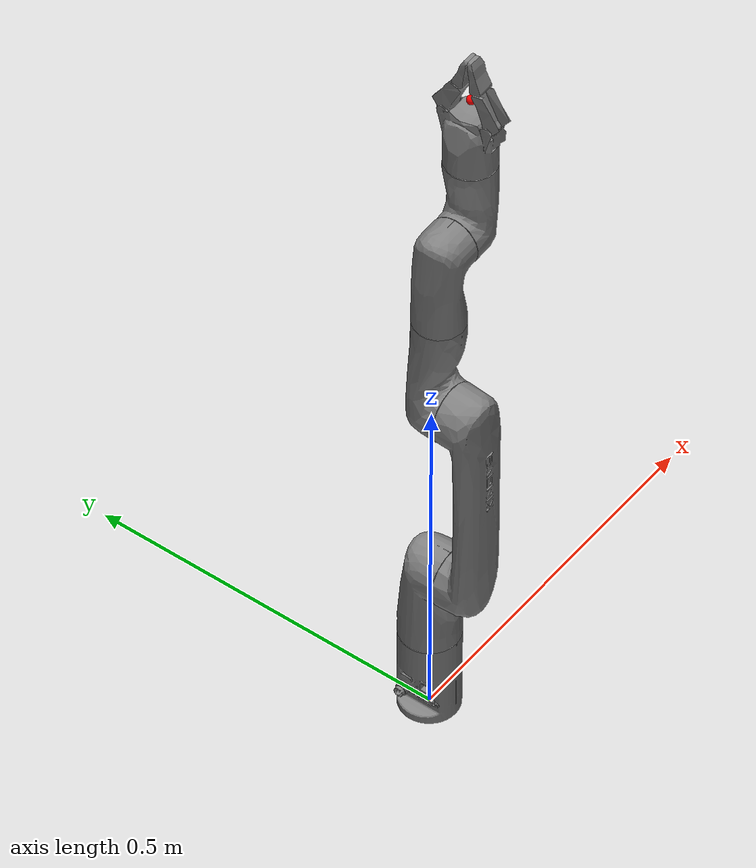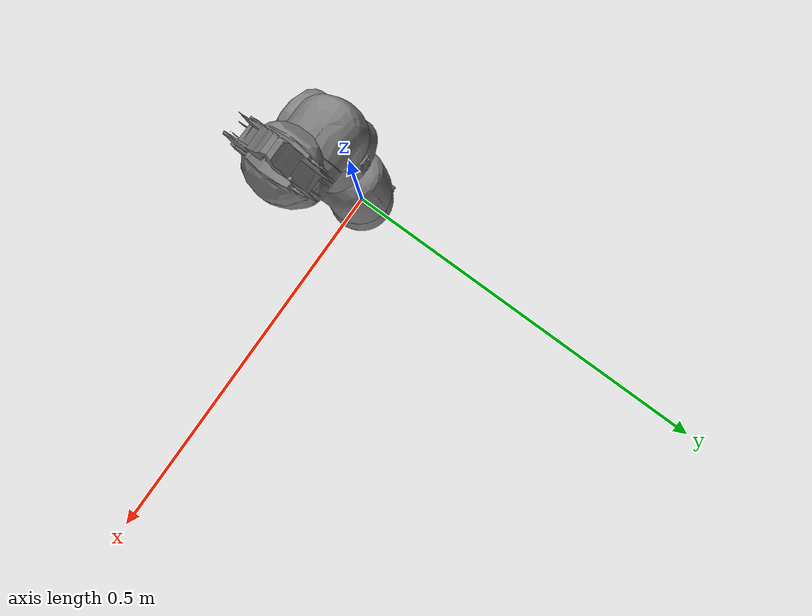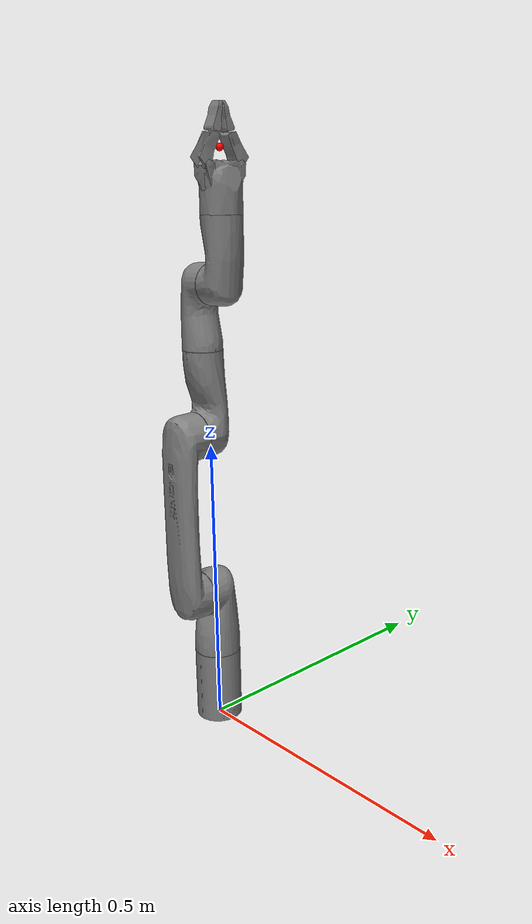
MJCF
<mujoco model="GEN3_LITE_6DOF_WITH_GRIPPER">
  <compiler angle="radian"/>

  <!-- Servo joints so gravity does not collapse the arm (same idea as kinova_gen3 menagerie MJCF). -->
  <option integrator="implicitfast" cone="elliptic" impratio="10"/>

  <default>
    <!-- Arm gains defined per actuator below (PA_kp + VA_kv from your tuning table). -->
    <default class="arm_act">
      <position kp="2000" kv="1"/>
    </default>
    <default class="finger_act">
      <position kp="150" kv="15"/>
    </default>
  </default>

  <asset>
    <mesh name="base_link" content_type="model/stl" file="../meshes/base_link.STL"/>
    <mesh name="shoulder_link" content_type="model/stl" file="../meshes/shoulder_link.STL"/>
    <mesh name="arm_link" content_type="model/stl" file="../meshes/arm_link.STL"/>
    <mesh name="forearm_link" content_type="model/stl" file="../meshes/forearm_link.STL"/>
    <mesh name="lower_wrist_link" content_type="model/stl" file="../meshes/lower_wrist_link.STL"/>
    <mesh name="upper_wrist_link" content_type="model/stl" file="../meshes/upper_wrist_link.STL"/>
    <mesh name="gripper_base_link" content_type="model/stl" file="../gen3_lite_2f/meshes/gripper_base_link.STL"/>
    <mesh name="right_finger_prox_link" content_type="model/stl" file="../gen3_lite_2f/meshes/right_finger_prox_link.STL"/>
    <mesh name="right_finger_dist_link" content_type="model/stl" file="../gen3_lite_2f/meshes/right_finger_dist_link.STL"/>
    <mesh name="left_finger_prox_link" content_type="model/stl" file="../gen3_lite_2f/meshes/left_finger_prox_link.STL"/>
    <mesh name="left_finger_dist_link" content_type="model/stl" file="../gen3_lite_2f/meshes/left_finger_dist_link.STL"/>
  </asset>

  <worldbody>
    <geom type="mesh" mesh="base_link"/>
    <body name="SHOULDER" pos="0 0 0.12825">
      <inertial pos="2.477e-05 0.0221353 0.0993769" quat="0.972429 0.233194 -0.000430944 0.00108761" mass="0.959744" diaginertia="0.00165947 0.00158128 0.000717195"/>
      <joint name="J0" pos="0 0 0" axis="0 0 1" range="-2.69 2.69" actuatorfrcrange="-10 10"/>
      <geom type="mesh" mesh="shoulder_link"/>
      <body name="ARM" pos="0 -0.03 0.115" quat="0.707105 0.707108 0 0">
        <inertial pos="0.029983 0.211548 0.0453031" quat="0.534676 0.467794 -0.46336 0.529706" mass="1.17756" diaginertia="0.0115237 0.0114928 0.000839712"/>
        <joint name="J1" pos="0 0 0" axis="0 0 1" range="-2.69 2.69" actuatorfrcrange="-14 14"/>
        <geom type="mesh" mesh="arm_link"/>
        <body name="FOREARM" pos="0 0.28 0" quat="-3.67321e-06 -1 0 0">
          <inertial pos="0.0301559 0.0950221 0.0073555" quat="0.523543 0.49139 -0.473675 0.50997" mass="0.597677" diaginertia="0.00169754 0.00163253 0.000291376"/>
          <joint name="J2" pos="0 0 0" axis="0 0 1" range="-2.69 2.69" actuatorfrcrange="-10 10"/>
          <geom type="mesh" mesh="forearm_link"/>
          <body name="LOWER_WRIST" pos="0 -0.14 0.02" quat="0.707105 0.707108 0 0">
            <inertial pos="0.00575149 0.0100044 0.0871921" quat="0.700403 -0.13124 -0.134345 0.688595" mass="0.526934" diaginertia="0.000785199 0.000756398 0.000275722"/>
            <joint name="J3" pos="0 0 0" axis="0 0 1" range="-2.59 2.59" actuatorfrcrange="-7 7"/>
            <geom type="mesh" mesh="lower_wrist_link"/>
            <body name="UPPER_WRIST" pos="0.0285 0 0.105" quat="0.707105 0 0.707108 0">
              <inertial pos="0.0805652 0.00980409 0.018728" quat="0.00431726 0.708285 -4.18922e-06 0.705913" mass="0.580973" diaginertia="0.00108466 0.00106374 0.000212638"/>
              <joint name="J4" pos="0 0 0" axis="0 0 1" range="-2.57 2.57" actuatorfrcrange="-7 7"/>
              <geom type="mesh" mesh="upper_wrist_link"/>
              <body name="END_EFFECTOR" pos="-0.105 0 0.0285" quat="0.707105 0 -0.707108 0">
                <joint name="J5" pos="0 0 0" axis="0 0 1" range="-2.59 2.59" actuatorfrcrange="-7 7"/>
                <geom type="mesh" mesh="gripper_base_link"/>
                <!-- EE reference for RL / scripts/mujoco_example.ee_to_block_pos; tune pos with task frame -->
                <site name="pinch_site" pos="0 0 0.095" size="0.006" rgba="1 0 0 1"/>
                <body name="RIGHT_FINGER_PROX" pos="0 -0.030501 0.070003" quat="0.707105 0 0.707108 0">
                  <inertial pos="0.020257 0.0063483 6.991e-05" quat="0.598941 0.598941 0.375858 0.375858" mass="0.018385" diaginertia="5.25068e-06 4.77e-06 1.59932e-06"/>
                  <joint name="RIGHT_BOTTOM" pos="0 0 0" axis="0 0 1" range="-0.09 0.96" actuatorfrcrange="-1000 1000"/>
                  <geom type="mesh" mesh="right_finger_prox_link"/>
                  <body name="RIGHT_FINGER_DIST" pos="-0.045636 0.020423 0">
                    <inertial pos="0.018488 0.0011091 0" quat="0.557345 0.557345 0.435162 0.435162" mass="0.010748" diaginertia="1.91e-06 1.61e-06 5.5e-07"/>
                    <joint name="RIGHT_TIP" pos="0 0 0" axis="0 0 1" range="-0.5 0.21" actuatorfrcrange="-1000 1000"/>
                    <geom type="mesh" mesh="right_finger_dist_link"/>
                  </body>
                </body>
                <body name="LEFT_FINGER_PROX" pos="0 0.0305 0.070003" quat="0.707105 0 0.707108 0">
                  <inertial pos="0.020257 0.0063483 6.99e-05" quat="0.598941 0.598941 0.375858 0.375858" mass="0.018385" diaginertia="5.25068e-06 4.77e-06 1.59932e-06"/>
                  <joint name="LEFT_BOTTOM" pos="0 0 0" axis="0 0 1" range="-0.96 0.09" actuatorfrcrange="-1000 1000"/>
                  <geom type="mesh" mesh="left_finger_prox_link"/>
                  <body name="LEFT_FINGER_DIST" pos="-0.045636 -0.020423 6.9901e-05">
                    <inertial pos="-0.018488 0.0011091 0" quat="0.557345 0.557345 0.435162 0.435162" mass="0.010748" diaginertia="1.91e-06 1.61e-06 5.5e-07"/>
                    <joint name="LEFT_TIP" pos="0 0 0" axis="0 0 -1" range="-0.5 0.21" actuatorfrcrange="-1000 1000"/>
                    <geom type="mesh" mesh="left_finger_dist_link"/>
                  </body>
                </body>
              </body>
            </body>
          </body>
        </body>
      </body>
    </body>
  </worldbody>

  <actuator>
    <position class="arm_act" name="a_J0" joint="J0" ctrlrange="-2.69 2.69" kp="800" kv="40"/>
    <position class="arm_act" name="a_J1" joint="J1" ctrlrange="-2.69 2.69" kp="500" kv="150"/>
    <position class="arm_act" name="a_J2" joint="J2" ctrlrange="-2.69 2.69" kp="600" kv="30"/>
    <position class="arm_act" name="a_J3" joint="J3" ctrlrange="-2.59 2.59" kp="200" kv="10"/>
    <position class="arm_act" name="a_J4" joint="J4" ctrlrange="-2.57 2.57" kp="200" kv="10"/>
    <position class="arm_act" name="a_J5" joint="J5" ctrlrange="-2.59 2.59" kp="100" kv="5"/>
    <position class="finger_act" name="a_RIGHT_BOTTOM" joint="RIGHT_BOTTOM" ctrlrange="-0.09 0.96"/>
    <position class="finger_act" name="a_RIGHT_TIP" joint="RIGHT_TIP" ctrlrange="-0.5 0.21"/>
    <position class="finger_act" name="a_LEFT_BOTTOM" joint="LEFT_BOTTOM" ctrlrange="-0.96 0.09"/>
    <position class="finger_act" name="a_LEFT_TIP" joint="LEFT_TIP" ctrlrange="-0.5 0.21"/>
  </actuator>
</mujoco>
